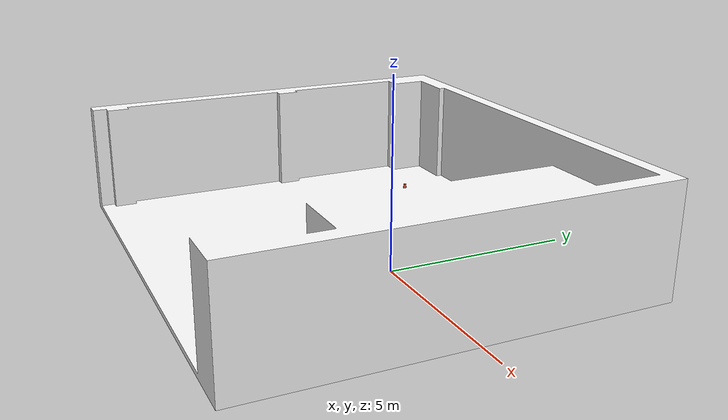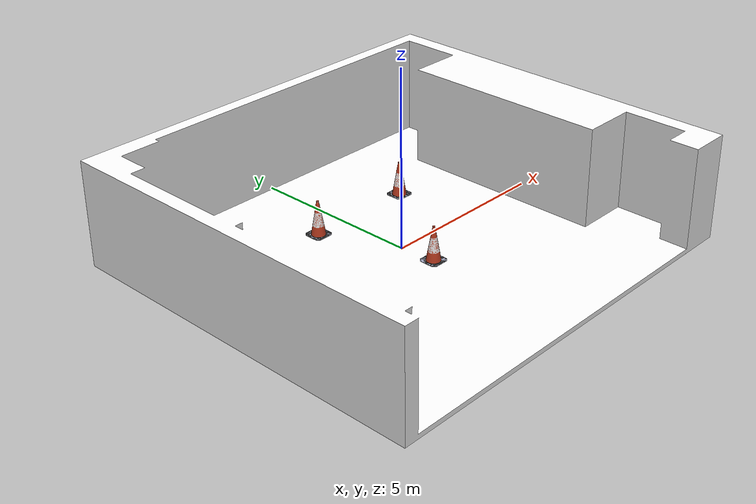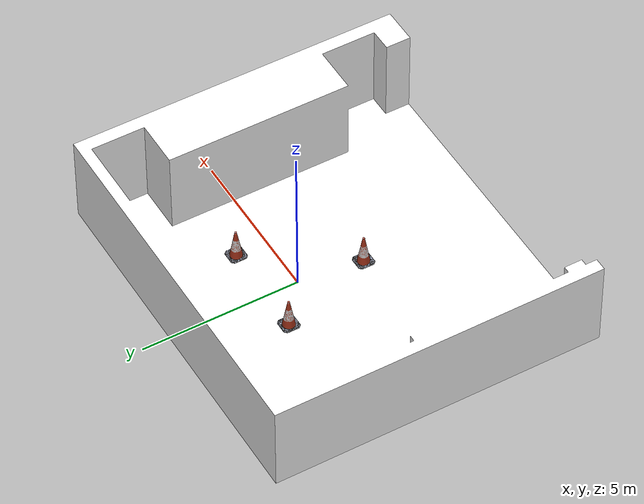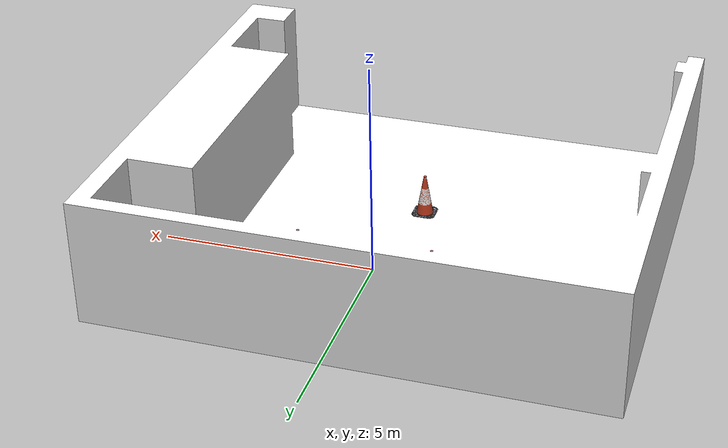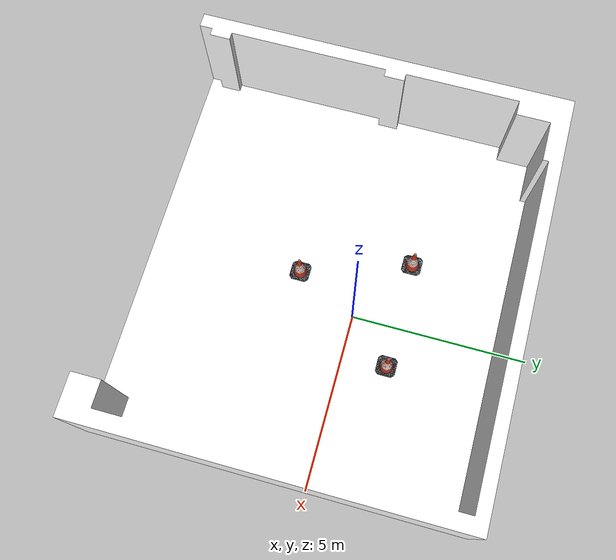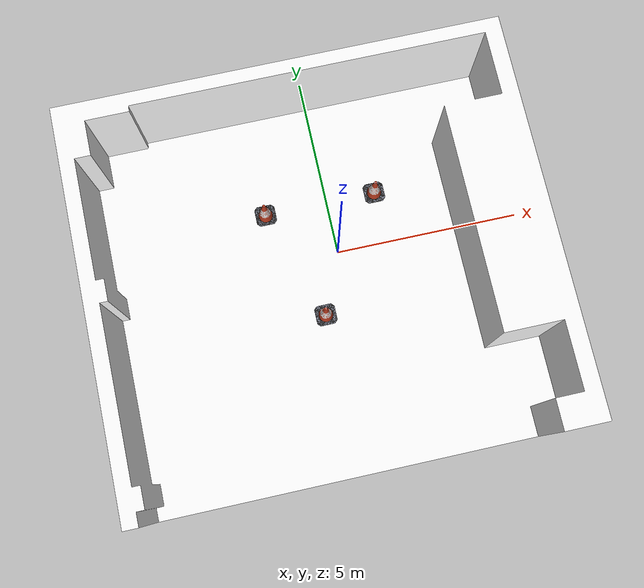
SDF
<?xml version="1.0" encoding="UTF-8" ?>
<sdf version="1.4">
  <world name="default">
    <scene>
      <ambient>0.5 0.5 0.5 1</ambient>
      <background>0.5 0.5 0.5 1</background>
      <shadows>false</shadows>
    </scene>
    <physics type="ode">
      <gravity>0 0 -9.81</gravity>
      <ode>
        <solver>
          <type>quick</type>
          <iters>10</iters>
          <sor>1.3</sor>
        </solver>
        <constraints>
          <cfm>0.0</cfm>
          <erp>0.2</erp>
          <contact_max_correcting_vel>10</contact_max_correcting_vel>
          <contact_surface_layer>0.001</contact_surface_layer>
        </constraints>
      </ode>
      <max_step_size>0.001</max_step_size>
    </physics>
    <light type="directional" name="directional_light_1">
      <pose>0 20 20 0.1 0.1 0</pose>
      <diffuse>1 1 1 1</diffuse>
      <specular>1 1 1 1</specular>
      <attenuation>
        <range>300</range>
      </attenuation>
      <direction>0.1 0.1 -1</direction>
      <cast_shadows>false</cast_shadows>
    </light>
    <model name="landscape">
      <link name="landscape_link">
        <pose>-6.0 -6.0 0.5 0 0 0</pose>
        <collision name="landscape_collision">
          <geometry>
            <mesh>
	      <uri>file://vicon_field.dae</uri>
              <scale>1 1 0.4</scale>
            </mesh>
          </geometry>
        </collision>
        <visual name="landscape">
          <geometry>
            <mesh>
	      <uri>file://vicon_field.dae</uri>
              <scale>1 1 0.4</scale>
            </mesh>
          </geometry>
          <cast_shadows>false</cast_shadows>
        </visual>
      </link>
      <static>true</static>
    </model>

    <!-- Cones!!! -->
    <model name="cone1">
      <static>true</static>
      <link name="cone1_link">
	  <pose>-2 1 0.6 0 0 0.0</pose>
	  <collision name="cone1_collision">
	      <geometry>
		  <mesh>
		    <uri>file://large_cone.dae</uri>
		    <scale>1 1 1</scale>
		  </mesh>
	      </geometry>
	  </collision>
	  <visual name="cone1_visual">
	      <geometry>
		<mesh>
		  <uri>file://large_cone.dae</uri>
		  <scale>1 1 1</scale>
		</mesh>
	      </geometry>
	      <cast_shadows>false</cast_shadows>
	  </visual>
      </link>
    </model>

    <model name="cone2">
      <static>true</static>
      <link name="cone2_link">
	  <pose>1 1 0.6 0 0 0.0</pose>
	  <collision name="cone2_collision">
	      <geometry>
		  <mesh>
		    <uri>file://large_cone.dae</uri>
		    <scale>1 1 1</scale>
		  </mesh>
	      </geometry>
	  </collision>
	  <visual name="cone2_visual">
	      <geometry>
		<mesh>
		  <uri>file://large_cone.dae</uri>
		  <scale>1 1 1</scale>
		</mesh>
	      </geometry>
	      <cast_shadows>false</cast_shadows>
	  </visual>
      </link>
    </model>

    <model name="cone3">
      <static>true</static>
      <link name="cone3_link">
	  <pose>-1 -2 0.6 0 0 0.0</pose>
	  <collision name="cone3_collision">
	      <geometry>
		  <mesh>
		    <uri>file://large_cone.dae</uri>
		    <scale>1 1 1</scale>
		  </mesh>
	      </geometry>
	  </collision>
	  <visual name="cone3_visual">
	      <geometry>
		<mesh>
		  <uri>file://large_cone.dae</uri>
		  <scale>1 1 1</scale>
		</mesh>
	      </geometry>
	      <cast_shadows>false</cast_shadows>
	  </visual>
      </link>
    </model>

  </world>
</sdf>
